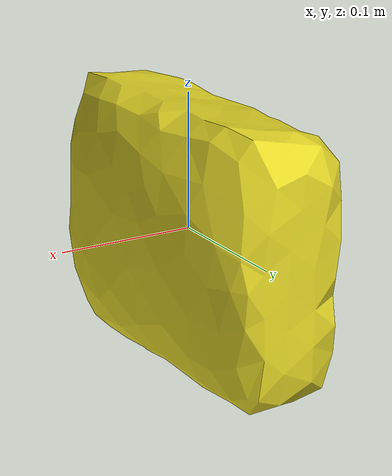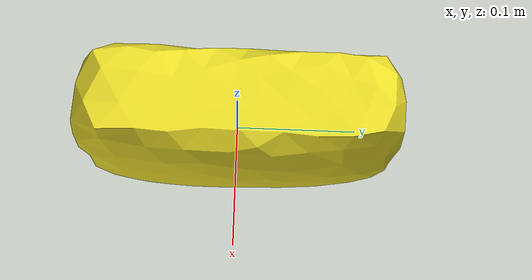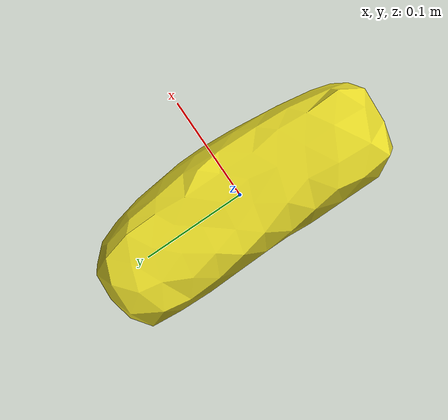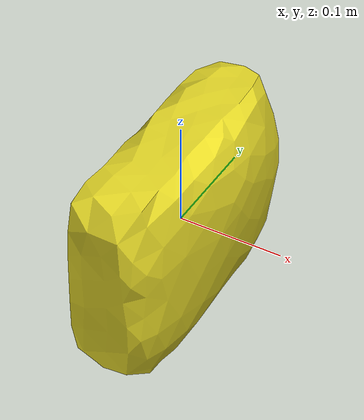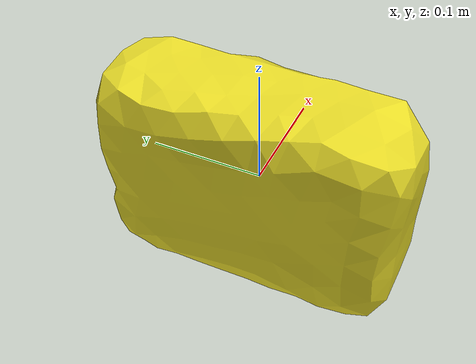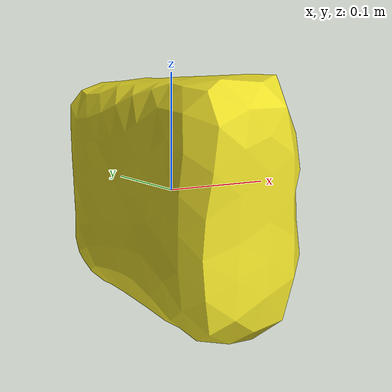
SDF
<?xml version="1.0" ?><sdf version="1.5"><model name="dhl-box-yellow">
<link name="link">
<pose>0 0 0 0 0 0</pose>
<inertial>
<pose>0 0 0 0 0 0</pose>
<mass>0.32</mass>
<inertia>
<ixx>0.00289503</ixx>
<ixy>0</ixy><iyy>0.0013254</iyy>
<ixz>0</ixz><iyz>0</iyz><izz>0.00213353</izz>
</inertia>
</inertial>
<visual name="visual">
<pose>0 0 0 0 0 0</pose>
<geometry><mesh><uri>model://dhl-box-yellow-centered/meshes/dhl-box-yellow-centered.dae</uri></mesh></geometry>
<material><script><uri>file://media/materials/scripts/gazebo.material</uri><name>Gazebo/YellowGlow</name></script></material></visual>
<collision name="collision"><pose>0 0 0 0 0 0</pose><geometry><mesh><uri>model://dhl-box-yellow-centered/meshes/dhl-box-yellow-centered.dae</uri></mesh></geometry>
<surface><friction><ode><mu>1.000000</mu><mu2>1.000000</mu2></ode></friction></surface>
</collision></link></model></sdf>
